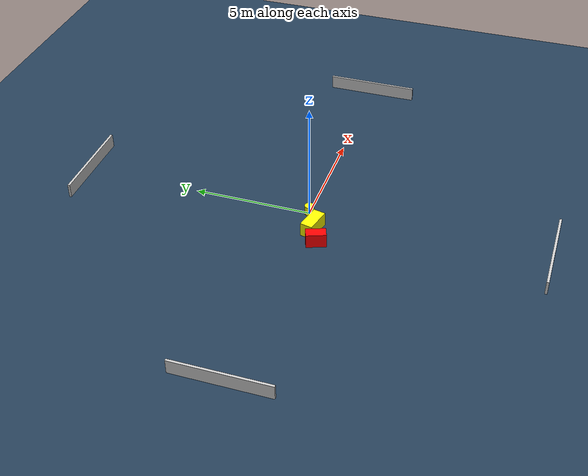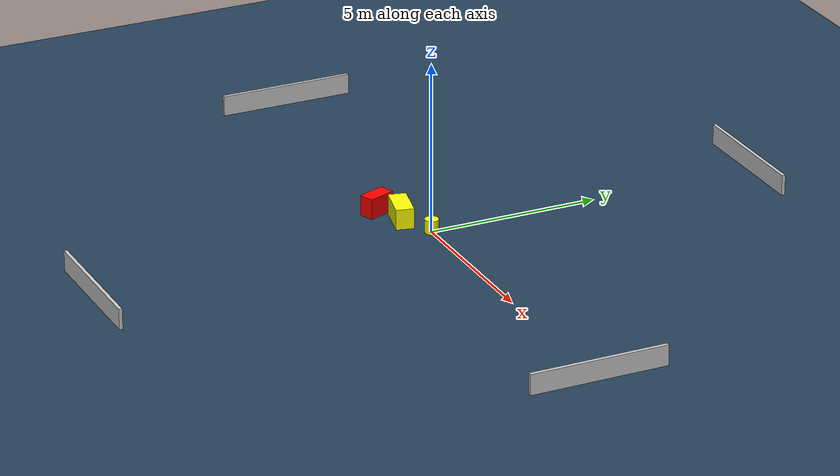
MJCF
<?xml version="1.0" ?>
<mujoco model="generated_environment">
  <option timestep="0.01" integrator="RK4" cone="elliptic"/>
  <default>
    <geom density="1"/>
  </default>
  <asset>
    <texture builtin="gradient" height="3072" name="skybox" rgb1="0.3 0.5 0.7" rgb2="0 0 0" type="skybox" width="512"/>
    <texture builtin="checker" height="300" name="groundplane" rgb1="0.2 0.3 0.4" rgb2="0.1 0.2 0.3" type="2d" width="300"/>
    <material name="groundplane" reflectance="0.2" texrepeat="5 5" texture="groundplane"/>
  </asset>
  <worldbody>
    <light dir="0 0 -1" directional="true" pos="0 0 1.5"/>
    <geom condim="3" friction="0.5 0.005 0.001" material="groundplane" name="floor" pos="0 0 0" size="0 0 0.05" type="plane"/>
    <body name="walls">
      <geom name="wall_1" condim="4" pos="-10.0 0.0 0.3" rgba="0.800000011920929 0.800000011920929 0.800000011920929 1.0" size="0.05 2.0 0.3" type="box"/>
      <geom name="wall_2" condim="4" pos="10.0 0.0 0.3" rgba="0.800000011920929 0.800000011920929 0.800000011920929 1.0" size="0.05 2.0 0.3" type="box"/>
      <geom name="wall_3" condim="4" pos="0.0 -10.0 0.3" rgba="0.800000011920929 0.800000011920929 0.800000011920929 1.0" size="2.0 0.05 0.3" type="box"/>
      <geom name="wall_4" condim="4" pos="0.0 10.0 0.3" rgba="0.800000011920929 0.800000011920929 0.800000011920929 1.0" size="2.0 0.05 0.3" type="box"/>
    </body>
    <body name="robot">
      <joint name="joint_x" type="slide" pos="0 0 0" axis="1 0 0"/>
      <joint name="joint_y" type="slide" pos="0 0 0" axis="0 1 0"/>
      <geom name="robot" type="cylinder" pos="0.0 0.0 0.2" size="0.2 0.2 0.0" mass="5.0" friction="1.0 0.005 0.0001" condim="4" rgba="1.0 1.0 0.0 1.0"/>
    </body>
    <body name="obstacle_1_movable">
      <geom name="obstacle_1_movable" condim="4" pos="-1.0088455673219034 -0.4616172334483716 0.3" euler="0 0 347.0082039392111" friction="0.0 0.005 0.001" rgba="1.0 1.0 0.0 1.0" size="0.542862902280574 0.2603511118428281 0.3" type="box" mass="0.1"/>
      <joint type="free"/>
    </body>
    <body name="obstacle_2_static">
      <geom name="obstacle_2_static" condim="4" pos="-1.8079173982288526 -0.8394402943848892 0.3" euler="0 0 110.73810336876244" friction="0.0 0.005 0.001" rgba="1.0 0.0 0.0 1.0" size="0.4147367168609225 0.22243948464639696 0.3" type="box"/>
    </body>
  </worldbody>
  <actuator>
    <motor name="actuator_x" joint="joint_x" gear="1" ctrlrange="-1 1"/>
    <motor name="actuator_y" joint="joint_y" gear="1" ctrlrange="-1 1"/>
  </actuator>
</mujoco>
